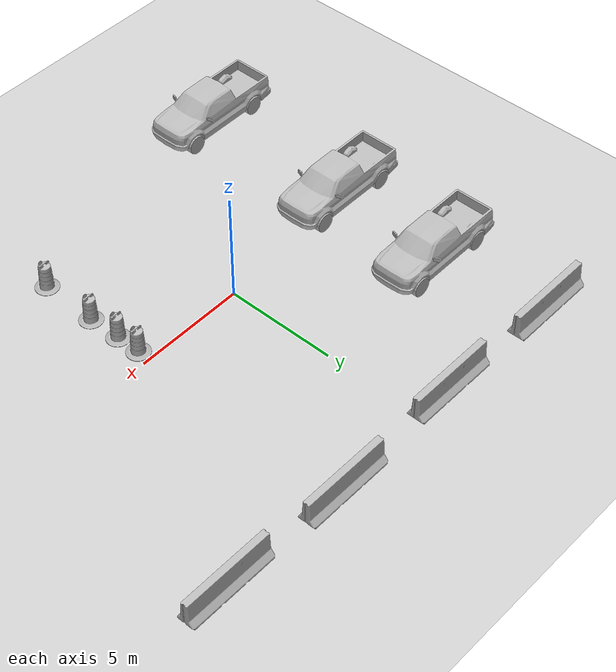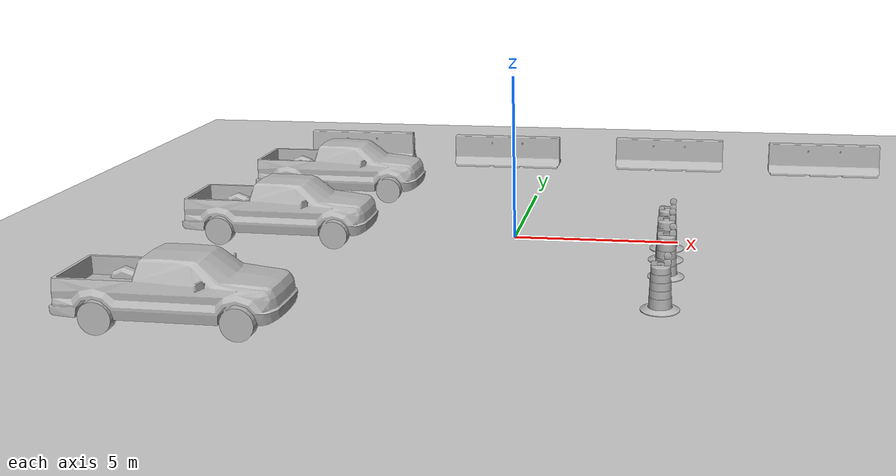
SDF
<sdf version="1.6">
 <world name="default">
  <light name="sun" type="directional">
   <pose>0 0 10 0 -0 0</pose>
   <diffuse>0.8 0.8 0.8 1</diffuse>
   <specular>0.1 0.1 0.1 1</specular>
   <attenuation>
    <range>1000</range>
    <constant>0.9</constant>
    <linear>0.01</linear>
    <quadratic>0.001</quadratic>
   </attenuation>
   <direction>-0.5 0.5 -1</direction>
  </light>
  <model name="ground_plane">
   <static>1</static>
   <link name="link">
    <collision name="collision">
     <geometry><plane><normal>0 0 1</normal><size>100 100</size></plane></geometry>
     <surface><friction><ode><mu>100</mu><mu2>50</mu2></ode></friction></surface>
    </collision>
    <visual name="visual">
     <cast_shadows>0</cast_shadows>
     <geometry><plane><normal>0 0 1</normal><size>100 100</size></plane></geometry>
     <material>
      <script><uri>file://media/materials/scripts/gazebo.material</uri><name>Gazebo/Grey</name></script>
     </material>
    </visual>
   </link>
  </model>
  <gravity>0 0 -9.8</gravity>
  <magnetic_field>6e-06 2.3e-05 -4.2e-05</magnetic_field>
  <atmosphere type="adiabatic"/>
  <physics name="default_physics" default="0" type="ode">
   <max_step_size>0.002</max_step_size>
   <real_time_factor>2</real_time_factor>
   <real_time_update_rate>1000</real_time_update_rate>
  </physics>
  <scene><ambient>0.4 0.4 0.4 1</ambient><background>0.7 0.7 0.7 1</background><shadows>1</shadows></scene>
  <spherical_coordinates>
   <surface_model>EARTH_WGS84</surface_model>
   <latitude_deg>0</latitude_deg>
   <longitude_deg>0</longitude_deg>
   <elevation>0</elevation>
   <heading_deg>0</heading_deg>
  </spherical_coordinates>
  <model name="jersey_barrier">
   <static>1</static>
   <link name="link">
    <visual name="visual">
     <geometry>
      <mesh><uri>model://jersey_barrier/meshes/jersey_barrier.dae</uri><scale>1 1 1</scale></mesh>
     </geometry>
    </visual>
    <collision name="upright">
     <pose>0 0 0.5715 0 -0 0</pose>
     <geometry><box><size>4.06542 0.3063 1.143</size></box></geometry>
    </collision>
    <collision name="base">
     <pose>0 0 0.032258 0 -0 0</pose>
     <geometry><box><size>4.06542 0.8107 0.064516</size></box></geometry>
    </collision>
    <collision name="base2">
     <pose>0 0 0.1 0 -0 0</pose>
     <geometry><box><size>4.06542 0.65 0.1</size></box></geometry>
    </collision>
    <collision name="base3">
     <pose>0 0 0.2 0 -0 0</pose>
     <geometry><box><size>4.06542 0.5 0.1</size></box></geometry>
    </collision>
    <collision name="left-angle">
     <pose>0 -0.224 0.2401 0.9 -0 0</pose>
     <geometry><box><size>4.06542 0.5 0.064516</size></box></geometry>
    </collision>
    <collision name="right-angle">
     <pose>0 0.224 0.2401 -0.9 0 0</pose>
     <geometry><box><size>4.06542 0.5 0.064516</size></box></geometry>
    </collision>
   </link>
   <pose>-7.57452 9.72756 0 0 -0 0</pose>
  </model>
  <model name="jersey_barrier_0">
   <static>1</static>
   <link name="link">
    <visual name="visual">
     <geometry>
      <mesh><uri>model://jersey_barrier/meshes/jersey_barrier.dae</uri><scale>1 1 1</scale></mesh>
     </geometry>
    </visual>
    <collision name="upright">
     <pose>0 0 0.5715 0 -0 0</pose>
     <geometry><box><size>4.06542 0.3063 1.143</size></box></geometry>
    </collision>
    <collision name="base">
     <pose>0 0 0.032258 0 -0 0</pose>
     <geometry><box><size>4.06542 0.8107 0.064516</size></box></geometry>
    </collision>
    <collision name="base2">
     <pose>0 0 0.1 0 -0 0</pose>
     <geometry><box><size>4.06542 0.65 0.1</size></box></geometry>
    </collision>
    <collision name="base3">
     <pose>0 0 0.2 0 -0 0</pose>
     <geometry><box><size>4.06542 0.5 0.1</size></box></geometry>
    </collision>
    <collision name="left-angle">
     <pose>0 -0.224 0.2401 0.9 -0 0</pose>
     <geometry><box><size>4.06542 0.5 0.064516</size></box></geometry>
    </collision>
    <collision name="right-angle">
     <pose>0 0.224 0.2401 -0.9 0 0</pose>
     <geometry><box><size>4.06542 0.5 0.064516</size></box></geometry>
    </collision>
   </link>
   <pose>-1.73919 9.49687 0 0 -0 0</pose>
  </model>
  <model name="jersey_barrier_1">
   <static>1</static>
   <link name="link">
    <visual name="visual">
     <geometry>
      <mesh><uri>model://jersey_barrier/meshes/jersey_barrier.dae</uri><scale>1 1 1</scale></mesh>
     </geometry>
    </visual>
    <collision name="upright">
     <pose>0 0 0.5715 0 -0 0</pose>
     <geometry><box><size>4.06542 0.3063 1.143</size></box></geometry>
    </collision>
    <collision name="base">
     <pose>0 0 0.032258 0 -0 0</pose>
     <geometry><box><size>4.06542 0.8107 0.064516</size></box></geometry>
    </collision>
    <collision name="base2">
     <pose>0 0 0.1 0 -0 0</pose>
     <geometry><box><size>4.06542 0.65 0.1</size></box></geometry>
    </collision>
    <collision name="base3">
     <pose>0 0 0.2 0 -0 0</pose>
     <geometry><box><size>4.06542 0.5 0.1</size></box></geometry>
    </collision>
    <collision name="left-angle">
     <pose>0 -0.224 0.2401 0.9 -0 0</pose>
     <geometry><box><size>4.06542 0.5 0.064516</size></box></geometry>
    </collision>
    <collision name="right-angle">
     <pose>0 0.224 0.2401 -0.9 0 0</pose>
     <geometry><box><size>4.06542 0.5 0.064516</size></box></geometry>
    </collision>
   </link>
   <pose>4.50836 9.6739 0 0 -0 0</pose>
  </model>
  <model name="jersey_barrier_2">
   <static>1</static>
   <link name="link">
    <visual name="visual">
     <geometry>
      <mesh><uri>model://jersey_barrier/meshes/jersey_barrier.dae</uri><scale>1 1 1</scale></mesh>
     </geometry>
    </visual>
    <collision name="upright">
     <pose>0 0 0.5715 0 -0 0</pose>
     <geometry><box><size>4.06542 0.3063 1.143</size></box></geometry>
    </collision>
    <collision name="base">
     <pose>0 0 0.032258 0 -0 0</pose>
     <geometry><box><size>4.06542 0.8107 0.064516</size></box></geometry>
    </collision>
    <collision name="base2">
     <pose>0 0 0.1 0 -0 0</pose>
     <geometry><box><size>4.06542 0.65 0.1</size></box></geometry>
    </collision>
    <collision name="base3">
     <pose>0 0 0.2 0 -0 0</pose>
     <geometry><box><size>4.06542 0.5 0.1</size></box></geometry>
    </collision>
    <collision name="left-angle">
     <pose>0 -0.224 0.2401 0.9 -0 0</pose>
     <geometry><box><size>4.06542 0.5 0.064516</size></box></geometry>
    </collision>
    <collision name="right-angle">
     <pose>0 0.224 0.2401 -0.9 0 0</pose>
     <geometry><box><size>4.06542 0.5 0.064516</size></box></geometry>
    </collision>
   </link>
   <pose>10.3005 9.43597 0 0 -0 0</pose>
  </model>
  <model name="pickup">
   <static>1</static>
   <link name="link">
    <collision name="collision">
     <pose>0 0 0 0 0 -1.5708</pose>
     <geometry><mesh><uri>model://pickup/meshes/pickup.dae</uri><scale>1 1 1</scale></mesh></geometry>
    </collision>
    <visual name="visual">
     <pose>0 0 0 0 0 -1.5708</pose>
     <geometry><mesh><uri>model://pickup/meshes/pickup.dae</uri><scale>1 1 1</scale></mesh></geometry>
    </visual>
   </link>
   <pose>-6.70028 4.54282 0 0 -0 0</pose>
  </model>
  <model name="pickup_0">
   <static>1</static>
   <link name="link">
    <collision name="collision">
     <pose>0 0 0 0 0 -1.5708</pose>
     <geometry><mesh><uri>model://pickup/meshes/pickup.dae</uri><scale>1 1 1</scale></mesh></geometry>
    </collision>
    <visual name="visual">
     <pose>0 0 0 0 0 -1.5708</pose>
     <geometry><mesh><uri>model://pickup/meshes/pickup.dae</uri><scale>1 1 1</scale></mesh></geometry>
    </visual>
   </link>
   <pose>-6.96734 -8.0869 0 0 -0 0</pose>
  </model>
  <model name="Construction Barrel">
   <static>1</static>
   <link name="link">
    <inertial>
     <pose>0 0 0.4 0 -0 0</pose>
     <mass>500</mass>
     <inertia><ixx>51.2096</ixx><iyy>51.2096</iyy><izz>25</izz><ixy>0</ixy><ixz>0</ixz><iyz>0</iyz></inertia>
    </inertial>
    <collision name="collision">
     <geometry>
      <mesh><uri>model://construction_barrel/meshes/construction_barrel.dae</uri><scale>1 1 1</scale></mesh>
     </geometry>
    </collision>
    <visual name="visual">
     <geometry>
      <mesh><uri>model://construction_barrel/meshes/construction_barrel.dae</uri><scale>1 1 1</scale></mesh>
     </geometry>
    </visual>
   </link>
   <pose>4.6483 -5.80647 0 0 -0 0</pose>
  </model>
  <model name="Construction Barrel_0">
   <static>1</static>
   <link name="link">
    <inertial>
     <pose>0 0 0.4 0 -0 0</pose>
     <mass>500</mass>
     <inertia><ixx>51.2096</ixx><iyy>51.2096</iyy><izz>25</izz><ixy>0</ixy><ixz>0</ixz><iyz>0</iyz></inertia>
    </inertial>
    <collision name="collision">
     <geometry>
      <mesh><uri>model://construction_barrel/meshes/construction_barrel.dae</uri><scale>1 1 1</scale></mesh>
     </geometry>
    </collision>
    <visual name="visual">
     <geometry>
      <mesh><uri>model://construction_barrel/meshes/construction_barrel.dae</uri><scale>1 1 1</scale></mesh>
     </geometry>
    </visual>
   </link>
   <pose>4.72682 -3.18366 0 0 -0 0</pose>
  </model>
  <model name="Construction Barrel_1">
   <static>1</static>
   <link name="link">
    <inertial>
     <pose>0 0 0.4 0 -0 0</pose>
     <mass>500</mass>
     <inertia><ixx>51.2096</ixx><iyy>51.2096</iyy><izz>25</izz><ixy>0</ixy><ixz>0</ixz><iyz>0</iyz></inertia>
    </inertial>
    <collision name="collision">
     <geometry>
      <mesh><uri>model://construction_barrel/meshes/construction_barrel.dae</uri><scale>1 1 1</scale></mesh>
     </geometry>
    </collision>
    <visual name="visual">
     <geometry>
      <mesh><uri>model://construction_barrel/meshes/construction_barrel.dae</uri><scale>1 1 1</scale></mesh>
     </geometry>
    </visual>
   </link>
   <pose>4.6866 -0.588167 0 0 -0 0</pose>
  </model>
  <model name="Construction Barrel_2">
   <static>1</static>
   <link name="link">
    <inertial>
     <pose>0 0 0.4 0 -0 0</pose>
     <mass>500</mass>
     <inertia><ixx>51.2096</ixx><iyy>51.2096</iyy><izz>25</izz><ixy>0</ixy><ixz>0</ixz><iyz>0</iyz></inertia>
    </inertial>
    <collision name="collision">
     <geometry>
      <mesh><uri>model://construction_barrel/meshes/construction_barrel.dae</uri><scale>1 1 1</scale></mesh>
     </geometry>
    </collision>
    <visual name="visual">
     <geometry>
      <mesh><uri>model://construction_barrel/meshes/construction_barrel.dae</uri><scale>1 1 1</scale></mesh>
     </geometry>
    </visual>
   </link>
   <pose>4.68493 -1.69908 0 0 -0 0</pose>
  </model>
  <model name="pickup_1">
   <static>1</static>
   <link name="link">
    <collision name="collision">
     <pose>0 0 0 0 0 -1.5708</pose>
     <geometry><mesh><uri>model://pickup/meshes/pickup.dae</uri><scale>1 1 1</scale></mesh></geometry>
    </collision>
    <visual name="visual">
     <pose>0 0 0 0 0 -1.5708</pose>
     <geometry><mesh><uri>model://pickup/meshes/pickup.dae</uri><scale>1 1 1</scale></mesh></geometry>
    </visual>
   </link>
   <pose>-6.95325 -0.760017 0 0 -0 0</pose>
  </model>
 </world>
</sdf>
